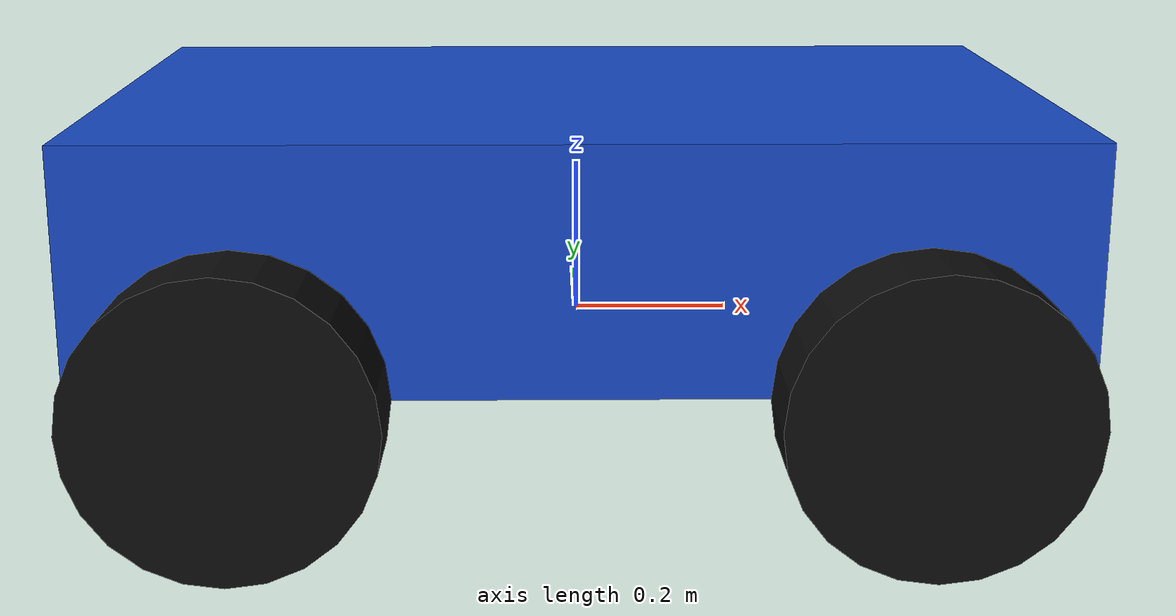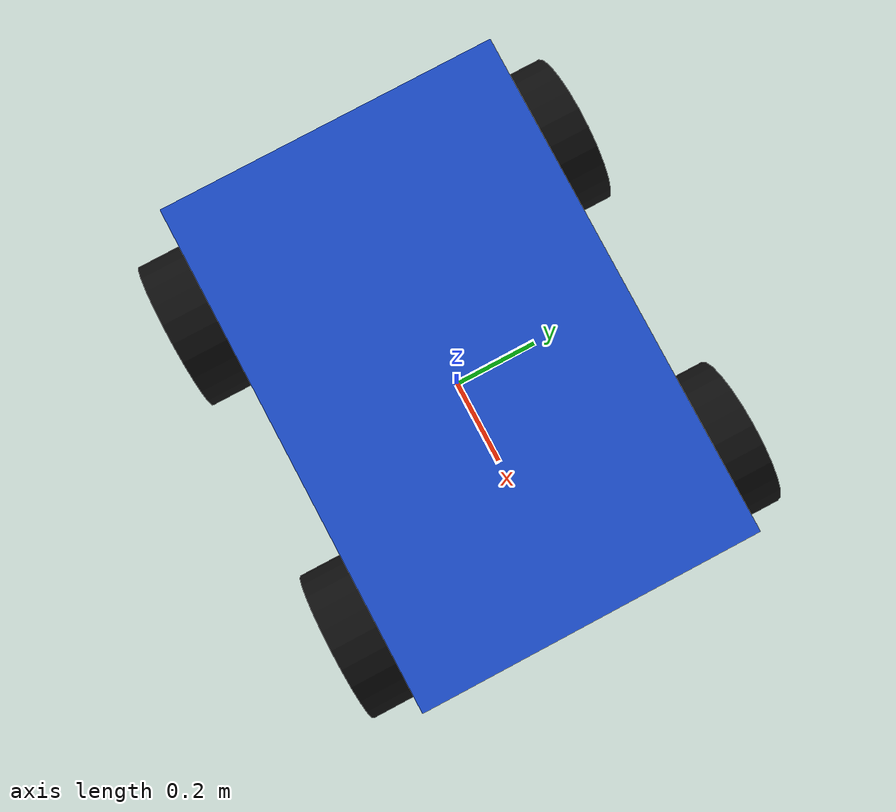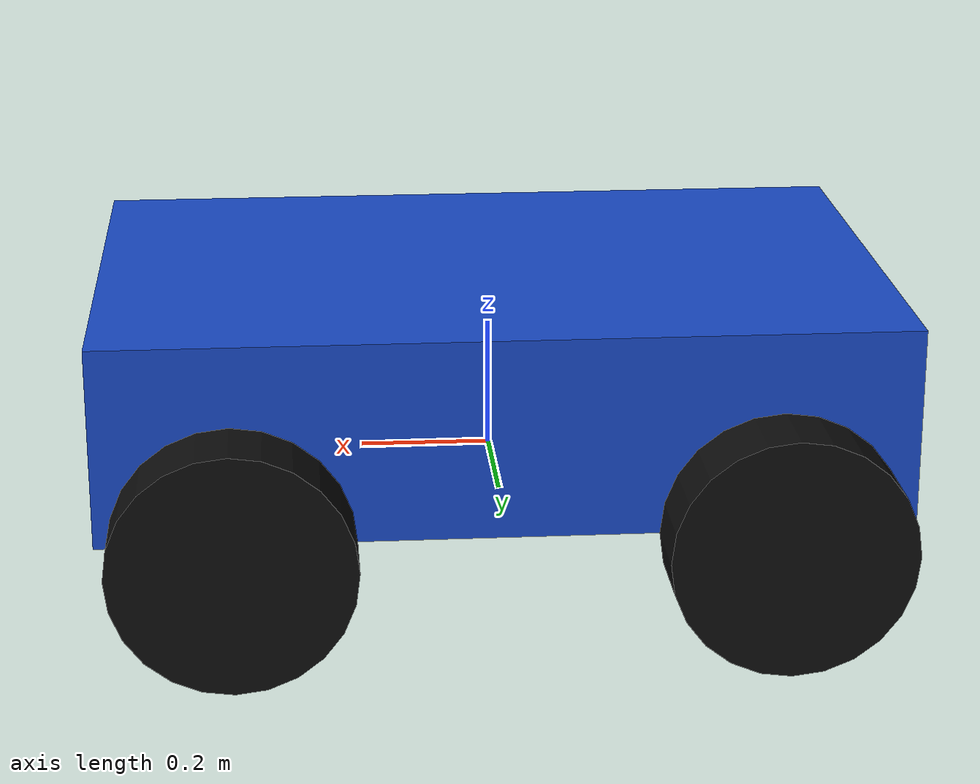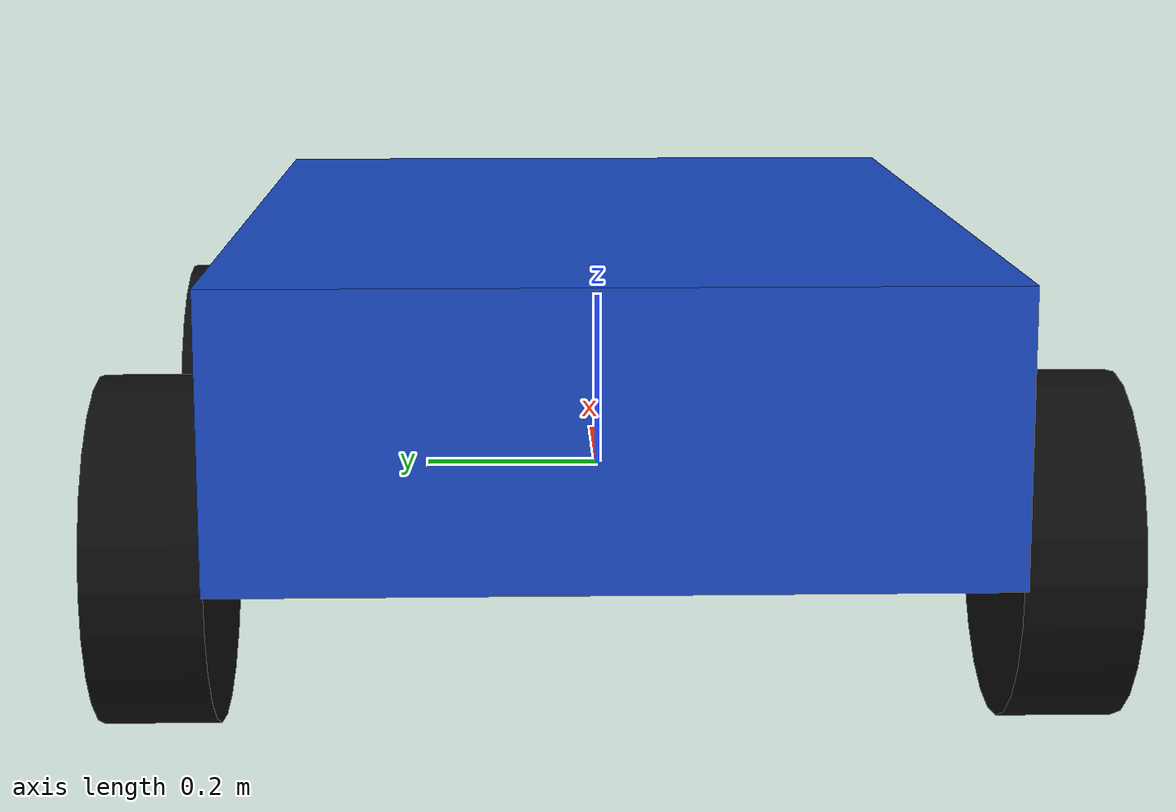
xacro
<?xml version="1.0"?>

<robot xmlns:xacro="http://www.ros.org/wiki/xacro"
       name="ugv">

  <!-- Materials            -->

  <material name="blue">
    <color rgba="0.1 0.3 0.8 1.0"/>
  </material>

  <material name="black">
    <color rgba="0.05 0.05 0.05 1.0"/>
  </material>

  <!-- Chassis               -->

  <link name="base_link">

    <visual>
      <origin xyz="0 0 0.15" rpy="0 0 0"/>

      <geometry>
        <box size="1.2 0.8 0.3"/>
      </geometry>

      <material name="blue"/>
    </visual>

  </link>

  <!-- Wheel macro           -->

  <xacro:macro name="wheel" params="name x y">

    <link name="${name}">

      <visual>

        <origin xyz="0 0 0" rpy="1.5708 0 0"/>

        <geometry>
          <cylinder radius="0.18" length="0.12"/>
        </geometry>

        <material name="black"/>

      </visual>

    </link>

    <joint name="${name}_joint"
           type="continuous">

      <parent link="base_link"/>
      <child link="${name}"/>

      <origin xyz="${x} ${y} 0.0"
              rpy="0 0 0"/>

      <axis xyz="0 1 0"/>

    </joint>

  </xacro:macro>

  <!-- Four wheels          -->

  <xacro:wheel
      name="front_left_wheel"
      x="0.4"
      y="0.46"/>

  <xacro:wheel
      name="front_right_wheel"
      x="0.4"
      y="-0.46"/>

  <xacro:wheel
      name="rear_left_wheel"
      x="-0.4"
      y="0.46"/>

  <xacro:wheel
      name="rear_right_wheel"
      x="-0.4"
      y="-0.46"/>

</robot>
